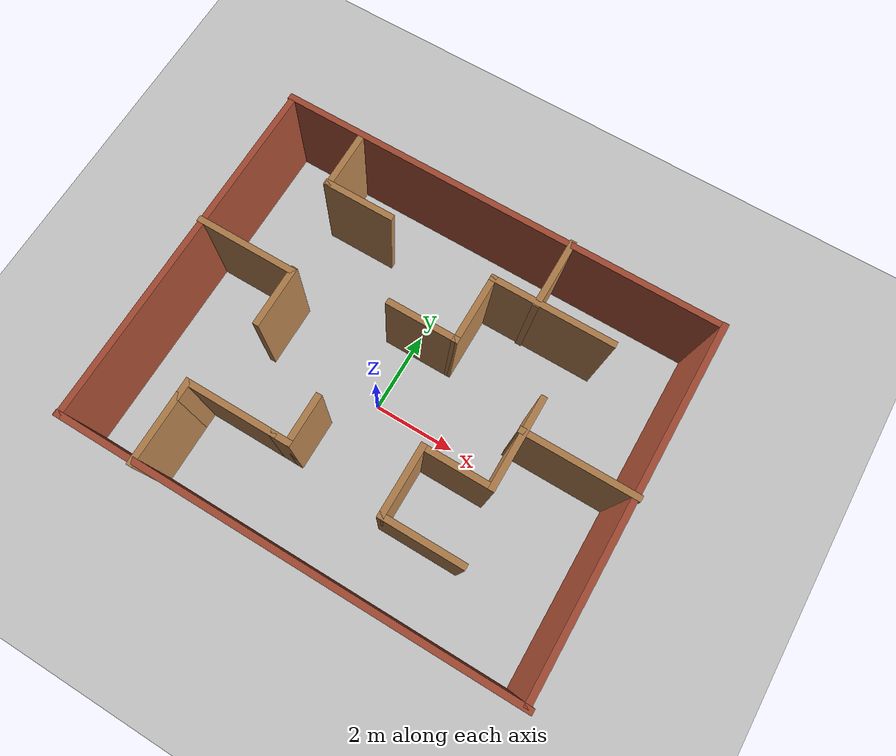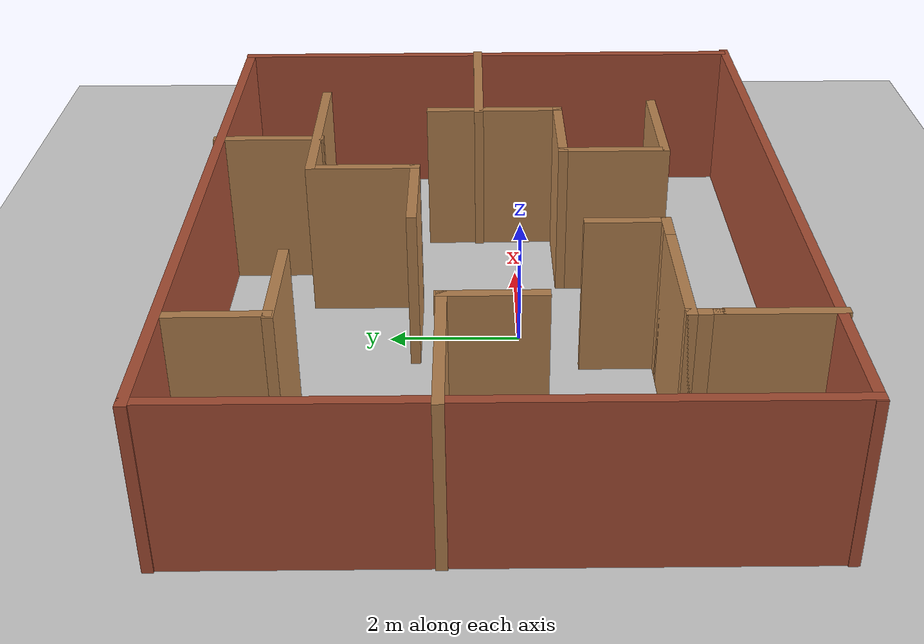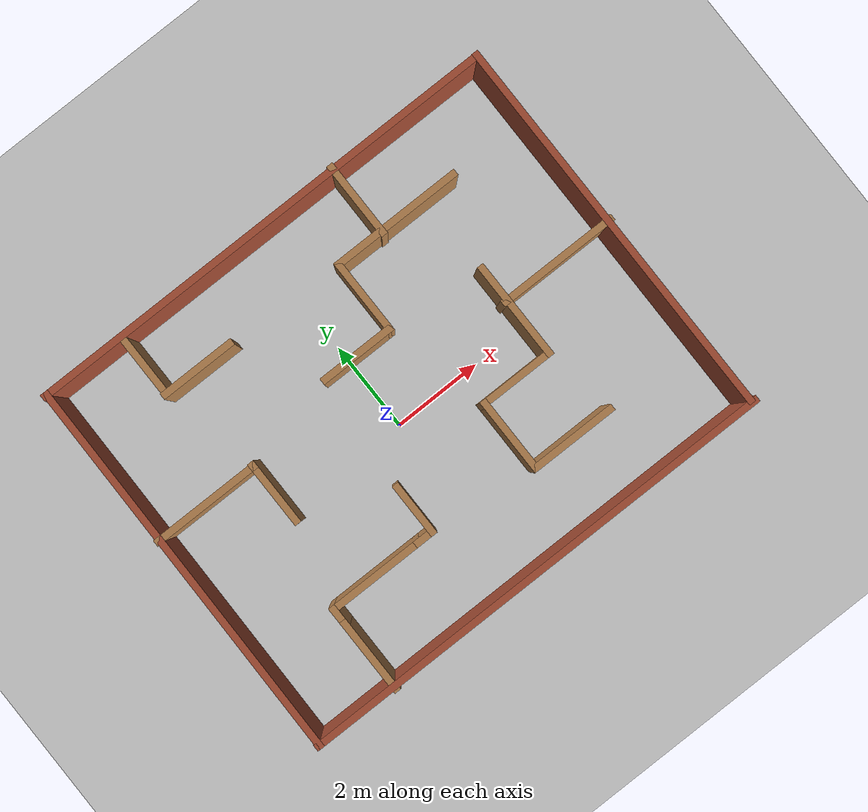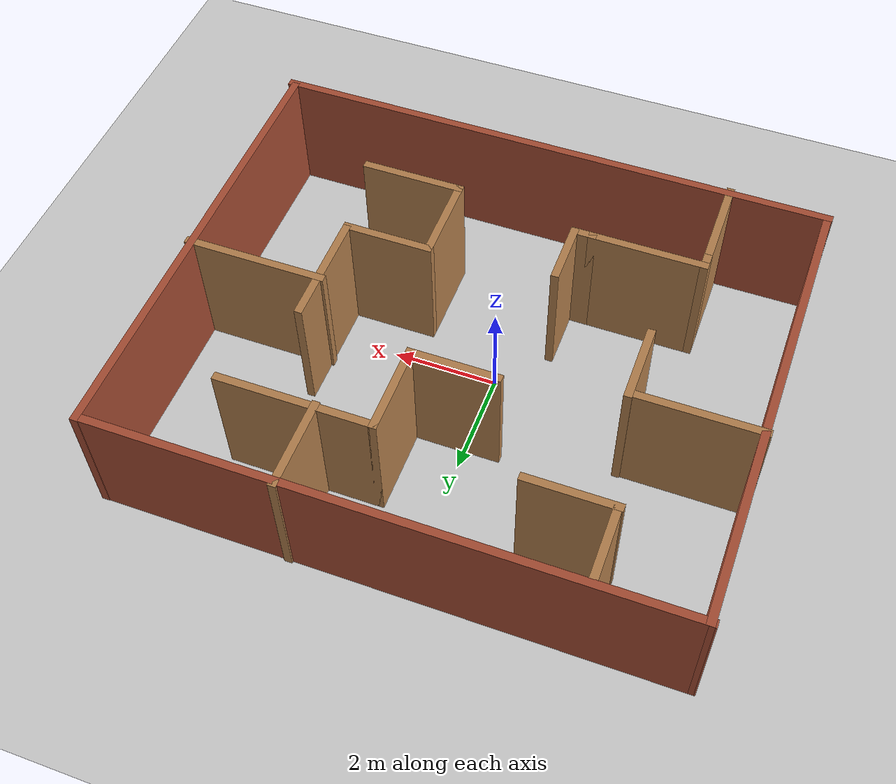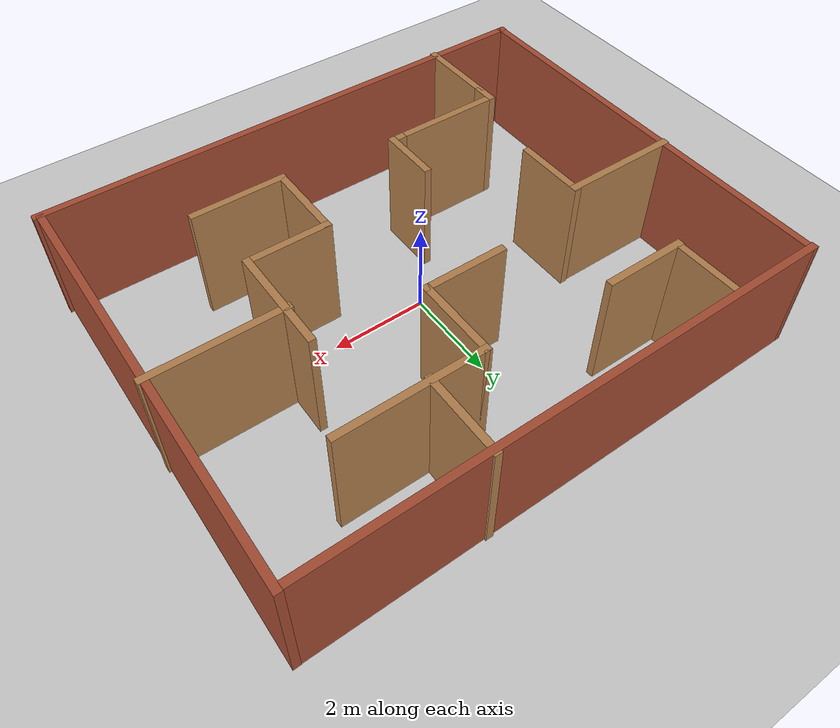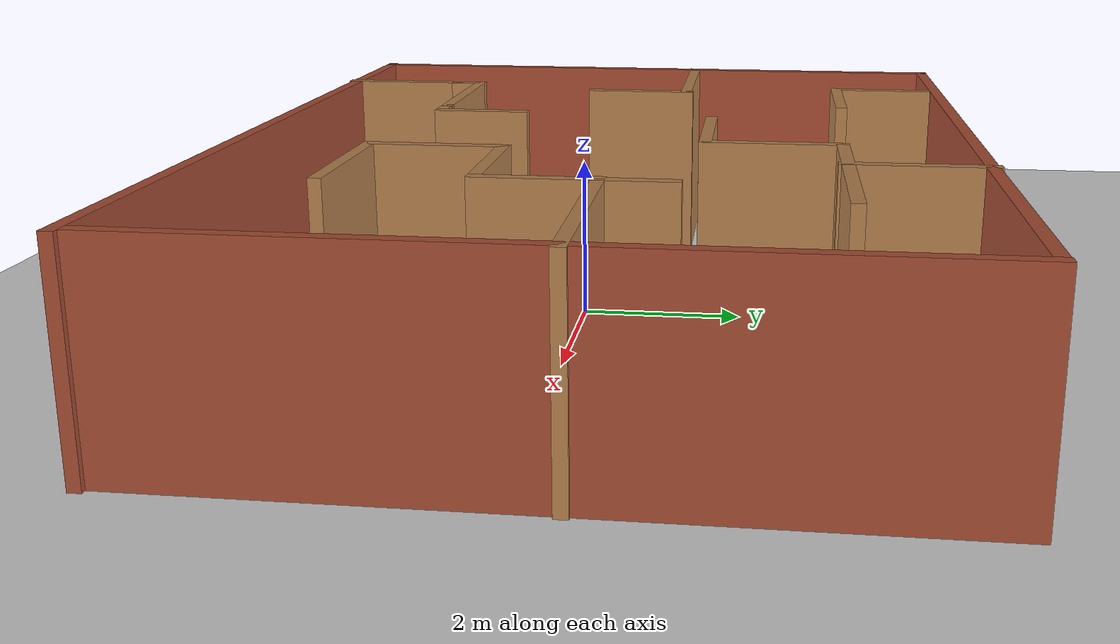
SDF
<sdf version="1.7">
 <world name="default">
  <light name="sun" type="directional">
   <pose>0 0 10 0 -0 0</pose>
   <diffuse>0.8 0.8 0.8 1</diffuse>
   <specular>0.2 0.2 0.2 1</specular>
   <attenuation>
    <range>1000</range>
    <constant>0.9</constant>
    <linear>0.01</linear>
    <quadratic>0.001</quadratic>
   </attenuation>
   <direction>-0.5 0.1 -0.9</direction>
   <spot><inner_angle>0</inner_angle><outer_angle>0</outer_angle><falloff>0</falloff></spot>
  </light>
  <model name="ground_plane">
   <static>1</static>
   <link name="link">
    <collision name="collision">
     <geometry><plane><normal>0 0 1</normal><size>100 100</size></plane></geometry>
     <surface>
      <contact><collide_bitmask>65535</collide_bitmask></contact>
      <friction><ode><mu>100</mu><mu2>50</mu2></ode></friction>
     </surface>
    </collision>
    <visual name="visual">
     <cast_shadows>0</cast_shadows>
     <geometry><plane><normal>0 0 1</normal><size>100 100</size></plane></geometry>
     <material>
      <script><uri>file://media/materials/scripts/gazebo.material</uri><name>Gazebo/Grey</name></script>
     </material>
    </visual>
   </link>
  </model>
  <gravity>0 0 -9.8</gravity>
  <magnetic_field>6e-06 2.3e-05 -4.2e-05</magnetic_field>
  <atmosphere type="adiabatic"/>
  <physics type="ode">
   <max_step_size>0.001</max_step_size>
   <real_time_factor>1</real_time_factor>
   <real_time_update_rate>1000</real_time_update_rate>
  </physics>
  <scene><ambient>0.4 0.4 0.4 1</ambient><background>0.7 0.7 0.7 1</background><shadows>1</shadows></scene>
  <audio><device>default</device></audio>
  <spherical_coordinates>
   <surface_model>EARTH_WGS84</surface_model>
   <latitude_deg>0</latitude_deg>
   <longitude_deg>0</longitude_deg>
   <elevation>0</elevation>
   <heading_deg>0</heading_deg>
  </spherical_coordinates>
  <model name="maze">
   <pose>0.307313 0.378218 0 0 -0 0</pose>
   <link name="Wall_14">
    <collision name="Wall_14_Collision">
     <geometry><box><size>10.75 0.15 2.5</size></box></geometry>
     <pose>0 0 1.25 0 -0 0</pose>
    </collision>
    <visual name="Wall_14_Visual">
     <pose>0 0 1.25 0 -0 0</pose>
     <geometry><box><size>10.75 0.15 2.5</size></box></geometry>
     <material>
      <script><uri>file://media/materials/scripts/gazebo.material</uri><name>Gazebo/Bricks</name></script>
      <ambient>1 1 1 1</ambient>
     </material>
     <meta><layer>0</layer></meta>
    </visual>
    <pose>-0.08563 4.33283 0 0 -0 0</pose>
   </link>
   <link name="Wall_16">
    <collision name="Wall_16_Collision">
     <geometry><box><size>1.40304 0.15 2.5</size></box></geometry>
     <pose>0 0 1.25 0 -0 0</pose>
    </collision>
    <visual name="Wall_16_Visual">
     <pose>0 0 1.25 0 -0 0</pose>
     <geometry><box><size>1.40304 0.15 2.5</size></box></geometry>
     <material>
      <script><uri>file://media/materials/scripts/gazebo.material</uri><name>Gazebo/Wood</name></script>
      <ambient>1 1 1 1</ambient>
     </material>
     <meta><layer>0</layer></meta>
    </visual>
    <pose>-3.50943 3.56012 0 0 -0 -1.5708</pose>
   </link>
   <link name="Wall_17">
    <collision name="Wall_17_Collision">
     <geometry><box><size>1.75 0.15 2.5</size></box></geometry>
     <pose>0 0 1.25 0 -0 0</pose>
    </collision>
    <visual name="Wall_17_Visual">
     <pose>0 0 1.25 0 -0 0</pose>
     <geometry><box><size>1.75 0.15 2.5</size></box></geometry>
     <material>
      <script><uri>file://media/materials/scripts/gazebo.material</uri><name>Gazebo/Wood</name></script>
      <ambient>1 1 1 1</ambient>
     </material>
     <meta><layer>0</layer></meta>
    </visual>
    <pose>-2.73256 2.91047 0 0 -0 0</pose>
   </link>
   <link name="Wall_21">
    <collision name="Wall_21_Collision">
     <geometry><box><size>2.5 0.15 2.5</size></box></geometry>
     <pose>0 0 1.25 0 -0 0</pose>
    </collision>
    <visual name="Wall_21_Visual">
     <pose>0 0 1.25 0 -0 0</pose>
     <geometry><box><size>2.5 0.15 2.5</size></box></geometry>
     <material>
      <script><uri>file://media/materials/scripts/gazebo.material</uri><name>Gazebo/Wood</name></script>
      <ambient>1 1 1 1</ambient>
     </material>
     <meta><layer>0</layer></meta>
    </visual>
    <pose>-4.23114 0.740179 0 0 -0 0</pose>
   </link>
   <link name="Wall_22">
    <collision name="Wall_22_Collision">
     <geometry><box><size>1.51869 0.15 2.5</size></box></geometry>
     <pose>0 0 1.25 0 -0 0</pose>
    </collision>
    <visual name="Wall_22_Visual">
     <pose>0 0 1.25 0 -0 0</pose>
     <geometry><box><size>1.51869 0.15 2.5</size></box></geometry>
     <material>
      <script><uri>file://media/materials/scripts/gazebo.material</uri><name>Gazebo/Wood</name></script>
      <ambient>1 1 1 1</ambient>
     </material>
     <meta><layer>0</layer></meta>
    </visual>
    <pose>-3.05614 0.078963 0 0 -0 -1.5708</pose>
   </link>
   <link name="Wall_25">
    <collision name="Wall_25_Collision">
     <geometry><box><size>1.75 0.15 2.5</size></box></geometry>
     <pose>0 0 1.25 0 -0 0</pose>
    </collision>
    <visual name="Wall_25_Visual">
     <pose>0 0 1.25 0 -0 0</pose>
     <geometry><box><size>1.75 0.15 2.5</size></box></geometry>
     <material>
      <script><uri>file://media/materials/scripts/gazebo.material</uri><name>Gazebo/Wood</name></script>
      <ambient>1 1 1 1</ambient>
     </material>
     <meta><layer>0</layer></meta>
    </visual>
    <pose>-3.55569 -3.57168 0 0 -0 1.5708</pose>
   </link>
   <link name="Wall_27">
    <collision name="Wall_27_Collision">
     <geometry><box><size>0.5 0.15 2.5</size></box></geometry>
     <pose>0 0 1.25 0 -0 0</pose>
    </collision>
    <visual name="Wall_27_Visual">
     <pose>0 0 1.25 0 -0 0</pose>
     <geometry><box><size>0.5 0.15 2.5</size></box></geometry>
     <material>
      <script><uri>file://media/materials/scripts/gazebo.material</uri><name>Gazebo/Wood</name></script>
      <ambient>1 1 1 1</ambient>
     </material>
     <meta><layer>0</layer></meta>
    </visual>
    <pose>-3.55569 -2.59668 0 0 -0 1.5708</pose>
   </link>
   <link name="Wall_28">
    <collision name="Wall_28_Collision">
     <geometry><box><size>2.25 0.15 2.5</size></box></geometry>
     <pose>0 0 1.25 0 -0 0</pose>
    </collision>
    <visual name="Wall_28_Visual">
     <pose>0 0 1.25 0 -0 0</pose>
     <geometry><box><size>2.25 0.15 2.5</size></box></geometry>
     <material>
      <script><uri>file://media/materials/scripts/gazebo.material</uri><name>Gazebo/Wood</name></script>
      <ambient>1 1 1 1</ambient>
     </material>
     <meta><layer>0</layer></meta>
    </visual>
    <pose>-2.50569 -2.42169 0 0 -0 0</pose>
   </link>
   <link name="Wall_29">
    <collision name="Wall_29_Collision">
     <geometry><box><size>0.5 0.15 2.5</size></box></geometry>
     <pose>0 0 1.25 0 -0 0</pose>
    </collision>
    <visual name="Wall_29_Visual">
     <pose>0 0 1.25 0 -0 0</pose>
     <geometry><box><size>0.5 0.15 2.5</size></box></geometry>
     <material>
      <script><uri>file://media/materials/scripts/gazebo.material</uri><name>Gazebo/Wood</name></script>
      <ambient>1 1 1 1</ambient>
     </material>
     <meta><layer>0</layer></meta>
    </visual>
    <pose>-1.28069 -2.42169 0 0 -0 0</pose>
   </link>
   <link name="Wall_31">
    <collision name="Wall_31_Collision">
     <geometry><box><size>1.75 0.15 2.5</size></box></geometry>
     <pose>0 0 1.25 0 -0 0</pose>
    </collision>
    <visual name="Wall_31_Visual">
     <pose>0 0 1.25 0 -0 0</pose>
     <geometry><box><size>1.75 0.15 2.5</size></box></geometry>
     <material>
      <script><uri>file://media/materials/scripts/gazebo.material</uri><name>Gazebo/Wood</name></script>
      <ambient>1 1 1 1</ambient>
     </material>
     <meta><layer>0</layer></meta>
    </visual>
    <pose>-0.104543 1.20279 0 0 -0 0</pose>
   </link>
   <link name="Wall_32">
    <collision name="Wall_32_Collision">
     <geometry><box><size>1.75 0.15 2.5</size></box></geometry>
     <pose>0 0 1.25 0 -0 0</pose>
    </collision>
    <visual name="Wall_32_Visual">
     <pose>0 0 1.25 0 -0 0</pose>
     <geometry><box><size>1.75 0.15 2.5</size></box></geometry>
     <material>
      <script><uri>file://media/materials/scripts/gazebo.material</uri><name>Gazebo/Wood</name></script>
      <ambient>1 1 1 1</ambient>
     </material>
     <meta><layer>0</layer></meta>
    </visual>
    <pose>0.695457 2.00279 0 0 -0 1.5708</pose>
   </link>
   <link name="Wall_33">
    <collision name="Wall_33_Collision">
     <geometry><box><size>3 0.15 2.5</size></box></geometry>
     <pose>0 0 1.25 0 -0 0</pose>
    </collision>
    <visual name="Wall_33_Visual">
     <pose>0 0 1.25 0 -0 0</pose>
     <geometry><box><size>3 0.15 2.5</size></box></geometry>
     <material>
      <script><uri>file://media/materials/scripts/gazebo.material</uri><name>Gazebo/Wood</name></script>
      <ambient>1 1 1 1</ambient>
     </material>
     <meta><layer>0</layer></meta>
    </visual>
    <pose>2.12046 2.80279 0 0 -0 0</pose>
   </link>
   <link name="Wall_35">
    <collision name="Wall_35_Collision">
     <geometry><box><size>1.75 0.15 2.5</size></box></geometry>
     <pose>0 0 1.25 0 -0 0</pose>
    </collision>
    <visual name="Wall_35_Visual">
     <pose>0 0 1.25 0 -0 0</pose>
     <geometry><box><size>1.75 0.15 2.5</size></box></geometry>
     <material>
      <script><uri>file://media/materials/scripts/gazebo.material</uri><name>Gazebo/Wood</name></script>
      <ambient>1 1 1 1</ambient>
     </material>
     <meta><layer>0</layer></meta>
    </visual>
    <pose>1.76435 3.57168 0 0 -0 -1.5708</pose>
   </link>
   <link name="Wall_39">
    <collision name="Wall_39_Collision">
     <geometry><box><size>1.25 0.15 2.5</size></box></geometry>
     <pose>0 0 1.25 0 -0 0</pose>
    </collision>
    <visual name="Wall_39_Visual">
     <pose>0 0 1.25 0 -0 0</pose>
     <geometry><box><size>1.25 0.15 2.5</size></box></geometry>
     <material>
      <script><uri>file://media/materials/scripts/gazebo.material</uri><name>Gazebo/Wood</name></script>
      <ambient>1 1 1 1</ambient>
     </material>
     <meta><layer>0</layer></meta>
    </visual>
    <pose>-1.10569 -1.87169 0 0 -0 1.5708</pose>
   </link>
   <link name="Wall_45">
    <collision name="Wall_45_Collision">
     <geometry><box><size>1.75 0.15 2.5</size></box></geometry>
     <pose>0 0 1.25 0 -0 0</pose>
    </collision>
    <visual name="Wall_45_Visual">
     <pose>0 0 1.25 0 -0 0</pose>
     <geometry><box><size>1.75 0.15 2.5</size></box></geometry>
     <material>
      <script><uri>file://media/materials/scripts/gazebo.material</uri><name>Gazebo/Wood</name></script>
      <ambient>1 1 1 1</ambient>
     </material>
     <meta><layer>0</layer></meta>
    </visual>
    <pose>2.05149 -1.10095 0 0 -0 3.14159</pose>
   </link>
   <link name="Wall_46">
    <collision name="Wall_46_Collision">
     <geometry><box><size>1.75 0.15 2.5</size></box></geometry>
     <pose>0 0 1.25 0 -0 0</pose>
    </collision>
    <visual name="Wall_46_Visual">
     <pose>0 0 1.25 0 -0 0</pose>
     <geometry><box><size>1.75 0.15 2.5</size></box></geometry>
     <material>
      <script><uri>file://media/materials/scripts/gazebo.material</uri><name>Gazebo/Wood</name></script>
      <ambient>1 1 1 1</ambient>
     </material>
     <meta><layer>0</layer></meta>
    </visual>
    <pose>1.25149 -1.90095 0 0 -0 -1.5708</pose>
   </link>
   <link name="Wall_47">
    <collision name="Wall_47_Collision">
     <geometry><box><size>2 0.15 2.5</size></box></geometry>
     <pose>0 0 1.25 0 -0 0</pose>
    </collision>
    <visual name="Wall_47_Visual">
     <pose>0 0 1.25 0 -0 0</pose>
     <geometry><box><size>2 0.15 2.5</size></box></geometry>
     <material>
      <script><uri>file://media/materials/scripts/gazebo.material</uri><name>Gazebo/Wood</name></script>
      <ambient>1 1 1 1</ambient>
     </material>
     <meta><layer>0</layer></meta>
    </visual>
    <pose>2.17649 -2.70095 0 0 -0 0</pose>
   </link>
   <link name="Wall_49">
    <collision name="Wall_49_Collision">
     <geometry><box><size>2.75 0.15 2.5</size></box></geometry>
     <pose>0 0 1.25 0 -0 0</pose>
    </collision>
    <visual name="Wall_49_Visual">
     <pose>0 0 1.25 0 -0 0</pose>
     <geometry><box><size>2.75 0.15 2.5</size></box></geometry>
     <material>
      <script><uri>file://media/materials/scripts/gazebo.material</uri><name>Gazebo/Wood</name></script>
      <ambient>1 1 1 1</ambient>
     </material>
     <meta><layer>0</layer></meta>
    </visual>
    <pose>4.10523 0.208175 0 0 -0 0</pose>
   </link>
   <link name="Wall_51">
    <collision name="Wall_51_Collision">
     <geometry><box><size>2.25 0.15 2.5</size></box></geometry>
     <pose>0 0 1.25 0 -0 0</pose>
    </collision>
    <visual name="Wall_51_Visual">
     <pose>0 0 1.25 0 -0 0</pose>
     <geometry><box><size>2.25 0.15 2.5</size></box></geometry>
     <material>
      <script><uri>file://media/materials/scripts/gazebo.material</uri><name>Gazebo/Wood</name></script>
      <ambient>1 1 1 1</ambient>
     </material>
     <meta><layer>0</layer></meta>
    </visual>
    <pose>2.85149 -0.050947 0 0 -0 1.5708</pose>
   </link>
   <link name="Wall_6">
    <collision name="Wall_6_Collision">
     <geometry><box><size>8.75 0.15 2.5</size></box></geometry>
     <pose>0 0 1.25 0 -0 0</pose>
    </collision>
    <visual name="Wall_6_Visual">
     <pose>0 0 1.25 0 -0 0</pose>
     <geometry><box><size>8.75 0.15 2.5</size></box></geometry>
     <material>
      <script><uri>file://media/materials/scripts/gazebo.material</uri><name>Gazebo/Bricks</name></script>
      <ambient>1 1 1 1</ambient>
     </material>
     <meta><layer>0</layer></meta>
    </visual>
    <pose>5.35986 0.041407 0 0 -0 -1.5708</pose>
   </link>
   <link name="Wall_8">
    <collision name="Wall_8_Collision">
     <geometry><box><size>11 0.15 2.5</size></box></geometry>
     <pose>0 0 1.25 0 -0 0</pose>
    </collision>
    <visual name="Wall_8_Visual">
     <pose>0 0 1.25 0 -0 0</pose>
     <geometry><box><size>11 0.15 2.5</size></box></geometry>
     <material>
      <script><uri>file://media/materials/scripts/gazebo.material</uri><name>Gazebo/Bricks</name></script>
      <ambient>1 1 1 1</ambient>
     </material>
     <meta><layer>0</layer></meta>
    </visual>
    <pose>0 -4.3241 0 0 -0 3.14159</pose>
   </link>
   <link name="Wall_9">
    <collision name="Wall_9_Collision">
     <geometry><box><size>8.80737 0.15 2.5</size></box></geometry>
     <pose>0 0 1.25 0 -0 0</pose>
    </collision>
    <visual name="Wall_9_Visual">
     <pose>0 0 1.25 0 -0 0</pose>
     <geometry><box><size>8.80737 0.15 2.5</size></box></geometry>
     <material>
      <script><uri>file://media/materials/scripts/gazebo.material</uri><name>Gazebo/Bricks</name></script>
      <ambient>1 1 1 1</ambient>
     </material>
     <meta><layer>0</layer></meta>
    </visual>
    <pose>-5.38127 0.004362 0 0 -0 1.56473</pose>
   </link>
   <static>1</static>
  </model>
 </world>
</sdf>
